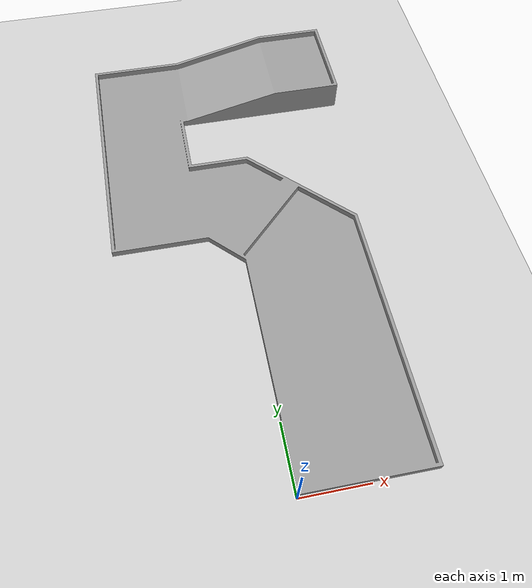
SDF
<?xml version="1.0" ?>
<sdf version="1.4">
  <world name="default">
    <include>
      <uri>model://ground_plane</uri>
    </include>
    <include>
      <uri>model://sun</uri>
    </include>
    <include>
      <uri>model://vennue</uri>
    </include>
  </world>
</sdf>

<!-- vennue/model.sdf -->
<sdf version='1.6'>
  <model name='vennue'>
    <link name='link_0'>
      <inertial>
        <mass>1000</mass>
        <inertia>
          <ixx>166</ixx>
          <ixy>0</ixy>
          <ixz>0</ixz>
          <iyy>166</iyy>
          <iyz>0</iyz>
          <izz>166</izz>
        </inertia>
        <pose frame=''>1 3 0 0 -0 0</pose>
      </inertial>
      <pose frame=''>0 -0 0.1 1.57 -0 0</pose>
      <gravity>1</gravity>
      <self_collide>0</self_collide>
      <kinematic>0</kinematic>
      <enable_wind>0</enable_wind>
      <visual name='visual'>
        <pose frame=''>0 0 0 0 -0 0</pose>
        <geometry>
          <mesh>
              <uri>model://vennue/vennue.dae</uri>
            <scale>1 1 1</scale>
          </mesh>
        </geometry>
        <material>
          <lighting>1</lighting>
          <script>
            <uri>file://media/materials/scripts/gazebo.material</uri>
            <name>Gazebo/Grey</name>
          </script>
          <shader type='vertex'>
            <normal_map>__default__</normal_map>
          </shader>
          <ambient>0.3 0.3 0.3 1</ambient>
          <diffuse>0.7 0.7 0.7 1</diffuse>
          <specular>0.01 0.01 0.01 1</specular>
          <emissive>0 0 0 1</emissive>
        </material>
        <transparency>0</transparency>
        <cast_shadows>1</cast_shadows>
      </visual>
      <collision name='collision'>
        <laser_retro>0</laser_retro>
        <max_contacts>10</max_contacts>
        <pose frame=''>0 0 0 0 -0 0</pose>
        <geometry>
          <mesh>
              <uri>model://vennue/vennue.dae</uri>
            <scale>1 1 1</scale>
          </mesh>
        </geometry>
        <surface>
          <friction>
            <ode>
              <mu>1</mu>
              <mu2>1</mu2>
              <fdir1>0 0 0</fdir1>
              <slip1>0</slip1>
              <slip2>0</slip2>
            </ode>
            <torsional>
              <coefficient>1</coefficient>
              <patch_radius>0</patch_radius>
              <surface_radius>0</surface_radius>
              <use_patch_radius>1</use_patch_radius>
              <ode>
                <slip>0</slip>
              </ode>
            </torsional>
          </friction>
          <bounce>
            <restitution_coefficient>0</restitution_coefficient>
            <threshold>1e+06</threshold>
          </bounce>
          <contact>
            <collide_without_contact>0</collide_without_contact>
            <collide_without_contact_bitmask>1</collide_without_contact_bitmask>
            <collide_bitmask>1</collide_bitmask>
            <ode>
              <soft_cfm>0</soft_cfm>
              <soft_erp>0.2</soft_erp>
              <kp>1e+13</kp>
              <kd>1</kd>
              <max_vel>0.01</max_vel>
              <min_depth>0</min_depth>
            </ode>
            <bullet>
              <split_impulse>1</split_impulse>
              <split_impulse_penetration_threshold>-0.01</split_impulse_penetration_threshold>
              <soft_cfm>0</soft_cfm>
              <soft_erp>0.2</soft_erp>
              <kp>1e+13</kp>
              <kd>1</kd>
            </bullet>
          </contact>
        </surface>
      </collision>
    </link>
    <static>0</static>
    <allow_auto_disable>1</allow_auto_disable>
  </model>
</sdf>
